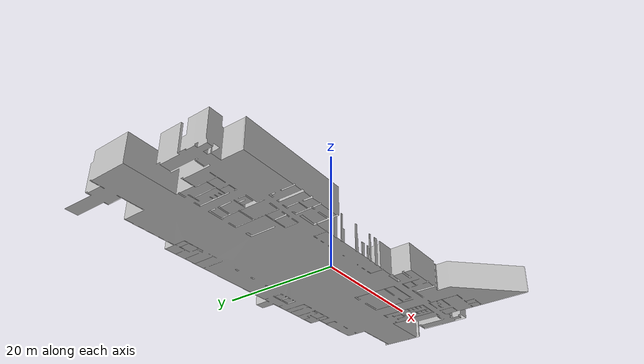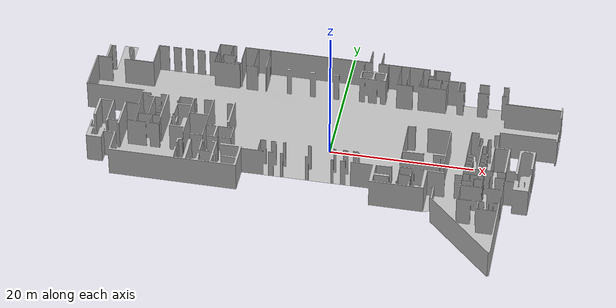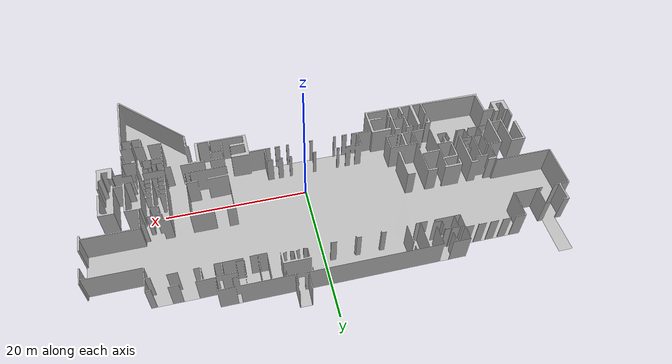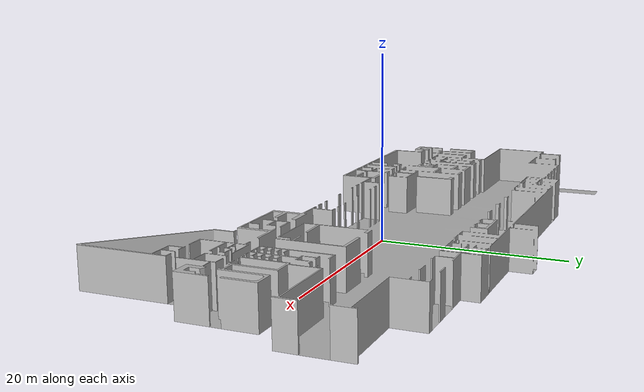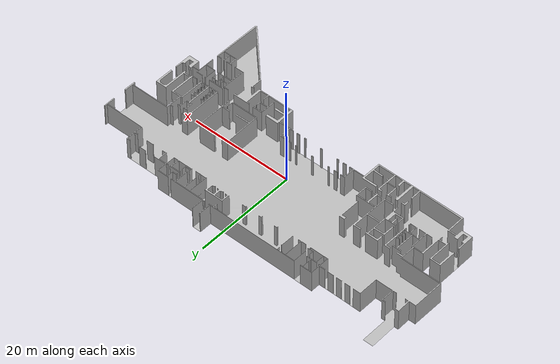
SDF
<?xml version="1.0" ?>
<sdf version="1.5">
  <model name="RC2016VRL_kouryu1f">
    <static>true</static>
    <pose>0 0 0.733 0 0 0</pose>
    <link name="link">
      <collision name="collision">
        <geometry>
          <mesh>
            <uri>model://RC2016VRL_kouryu1f/kouryu1f.dae</uri>
            <scale>2.0 2.0 2.0</scale>
          </mesh>
        </geometry>
      </collision>
      <visual name="visual">
        <geometry>
          <mesh>
            <uri>model://RC2016VRL_kouryu1f/kouryu1f.dae</uri>
            <scale>2.0 2.0 2.0</scale>
          </mesh>
        </geometry>
        <cast_shadows>false</cast_shadows>
      </visual>
    </link>
  </model>
</sdf>
